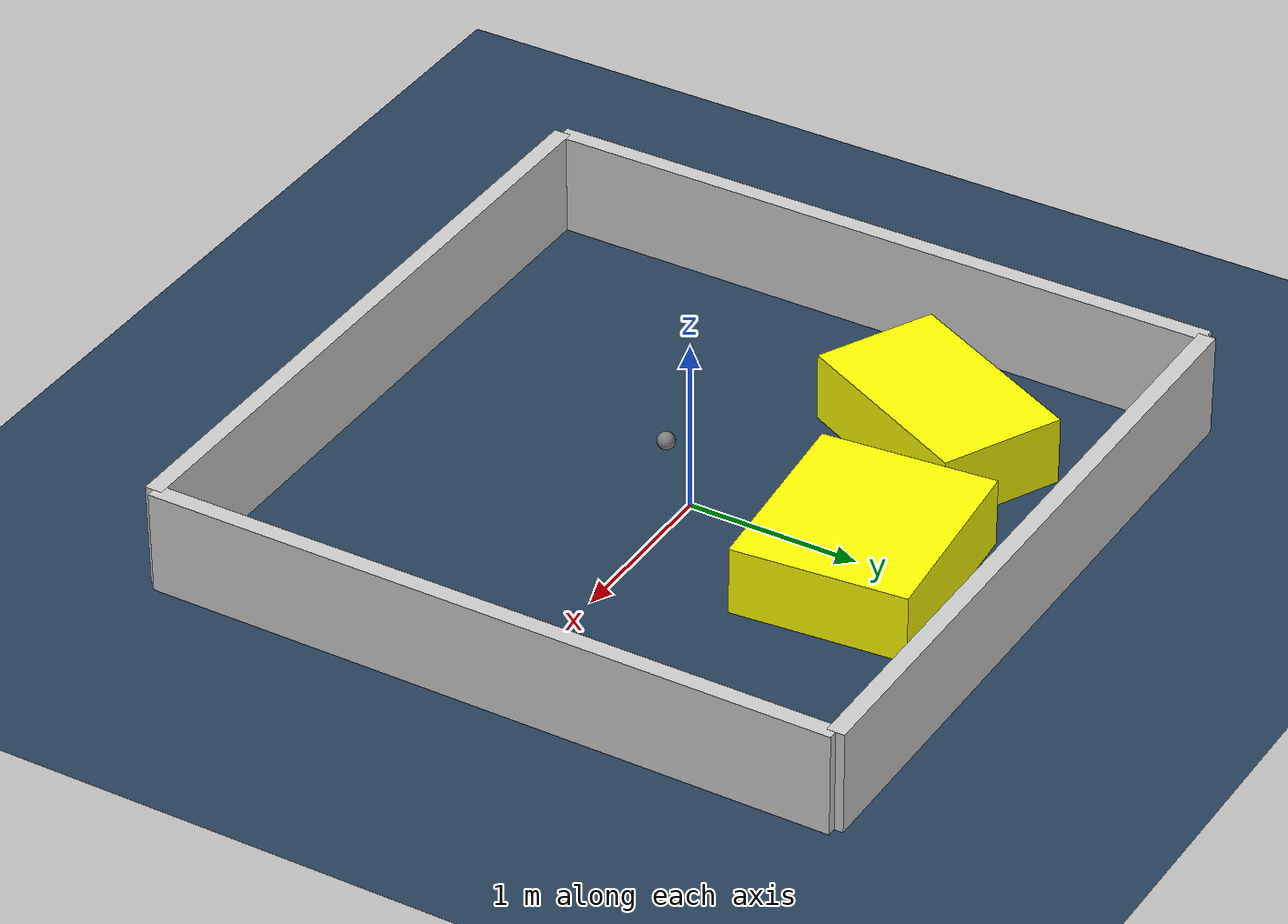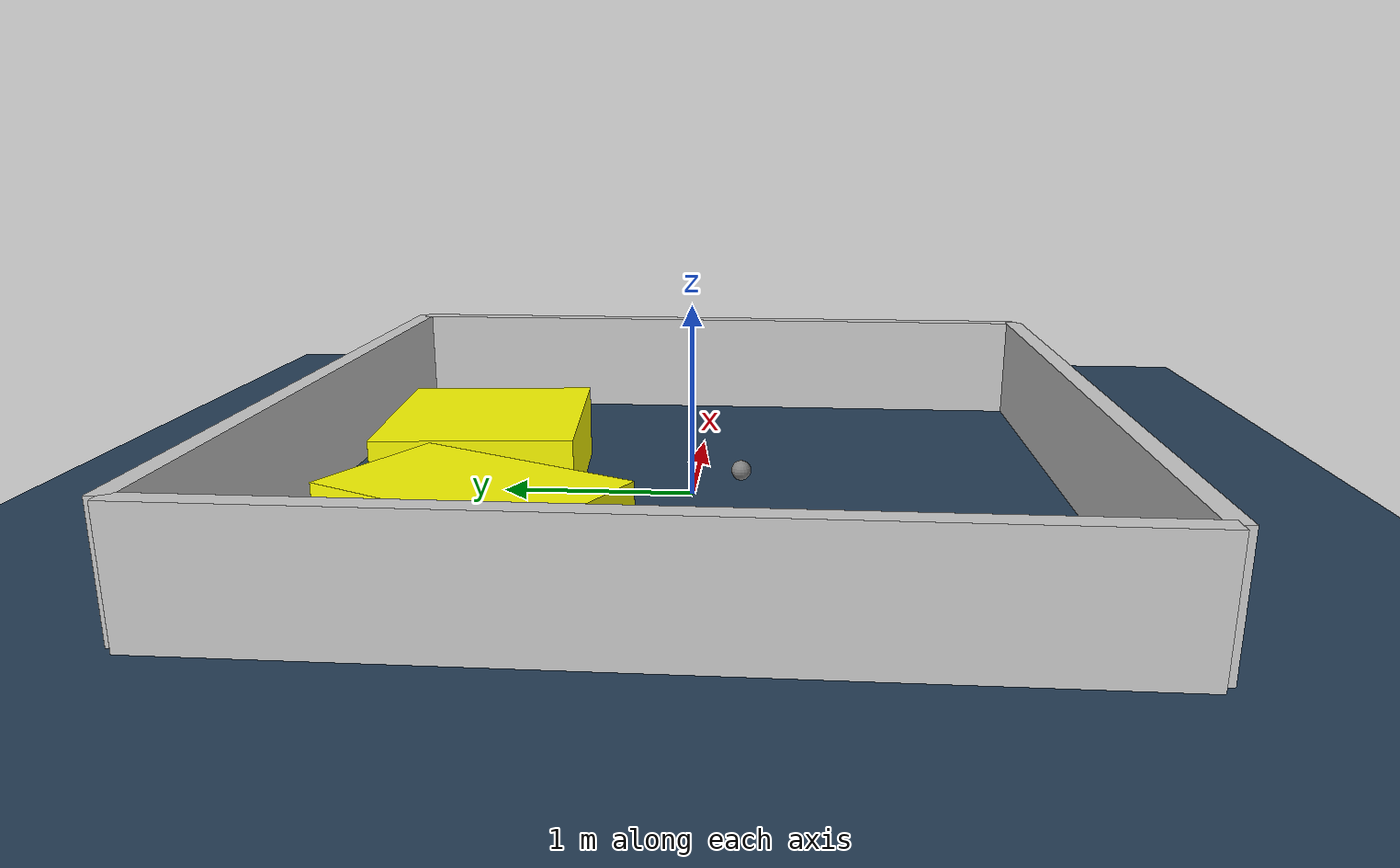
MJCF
<?xml version="1.0" ?>
<mujoco model="generated_environment">
  <option timestep="0.01" integrator="RK4" cone="elliptic"/>
  <default>
    <geom density="1"/>
  </default>
  <asset>
    <texture builtin="gradient" height="3072" rgb1="0.3 0.5 0.7" rgb2="0 0 0" type="skybox" width="512"/>
    <texture builtin="checker" height="300" mark="edge" markrgb="0.8 0.8 0.8" name="groundplane" rgb1="0.2 0.3 0.4" rgb2="0.1 0.2 0.3" type="2d" width="300"/>
    <material name="groundplane" reflectance="0.2" texrepeat="5 5" texture="groundplane" texuniform="true"/>
    <material name="robot" rgba="0.0 1.0 0.0 1"/>
  </asset>
  <worldbody>
    <light dir="0 0 -1" directional="true" pos="0 0 1.5"/>
    <geom condim="4" friction="1.0 0.005 0.001" material="groundplane" name="floor" size="0 0 0.05" type="plane"/>
    <body name="walls">
      <geom name="wall_1" condim="4" pos="-2.0 0.0 0.3" rgba="0.800000011920929 0.800000011920929 0.800000011920929 1.0" size="0.05 2.0 0.3" type="box"/>
      <geom name="wall_2" condim="4" pos="2.0 0.0 0.3" rgba="0.800000011920929 0.800000011920929 0.800000011920929 1.0" size="0.05 2.0 0.3" type="box"/>
      <geom name="wall_3" condim="4" pos="0.0 -2.0 0.3" rgba="0.800000011920929 0.800000011920929 0.800000011920929 1.0" size="2.0 0.05 0.3" type="box"/>
      <geom name="wall_4" condim="4" pos="0.0 2.0 0.3" rgba="0.800000011920929 0.800000011920929 0.800000011920929 1.0" size="2.0 0.05 0.3" type="box"/>
    </body>
    <body name="robot">
      <joint name="joint_x" type="slide" pos="0 0 0" axis="1 0 0"/>
      <joint name="joint_y" type="slide" pos="0 0 0" axis="0 1 0"/>
      <geom name="robot" type="sphere" pos="-0.2045009763663288 -0.26478337491620985 0.2" size="0.05" mass="5." friction="1.0 0.005 0.0001" condim="4"/>
      <site name="sensor_ball"/>
    </body>
    <body name="obstacle_1_movable">
      <geom name="obstacle_1_movable" condim="4" pos="-1.1120977851636957 0.8677220183339847 0.2" euler="0 0 63.37570371124527" friction="1.0 0.005 0.001" rgba="1 1 0 1" size="0.5957513828797016 0.3678328298817037 0.2" type="box" mass="0.1"/>
      <joint type="free"/>
    </body>
    <body name="obstacle_2_movable">
      <geom name="obstacle_2_movable" condim="4" pos="0.09987853507740918 1.099621555652087 0.2" euler="0 0 5.015983915286766" friction="1.0 0.005 0.001" rgba="1 1 0 1" size="0.5743139138841604 0.500098913611622 0.2" type="box" mass="0.1"/>
      <joint type="free"/>
    </body>
  </worldbody>
  <actuator>
    <motor name="actuator_x" joint="joint_x" gear="1" ctrlrange="-1 1"/>
    <motor name="actuator_y" joint="joint_y" gear="1" ctrlrange="-1 1"/>
  </actuator>
</mujoco>
